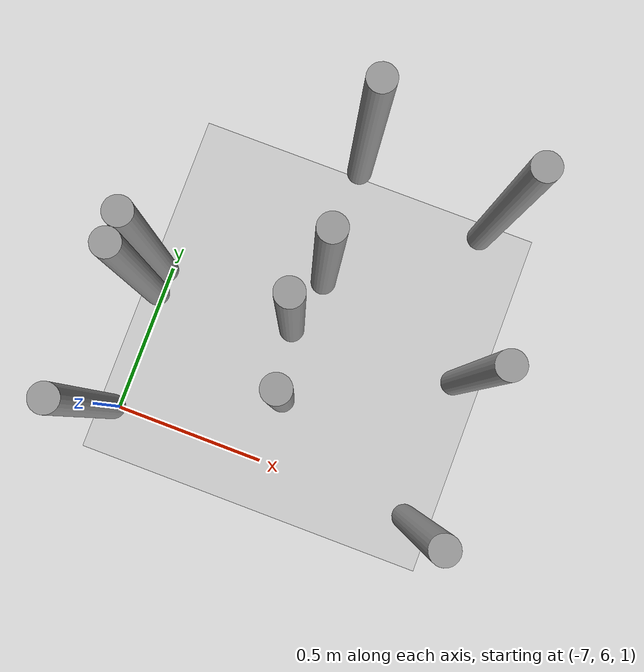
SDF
<sdf version="1.6">
 <world name="default">
  <model name="ground_plane">
   <static>1</static>
   <link name="link">
    <collision name="collision">
     <geometry><plane><normal>0 0 1</normal><size>100 100</size></plane></geometry>
     <surface>
      <contact><collide_bitmask>65535</collide_bitmask></contact>
      <friction><ode><mu>100</mu><mu2>50</mu2></ode></friction>
     </surface>
    </collision>
    <visual name="visual">
     <cast_shadows>0</cast_shadows>
     <geometry><plane><normal>0 0 1</normal><size>100 100</size></plane></geometry>
     <material>
      <script><uri>file://media/materials/scripts/gazebo.material</uri><name>Gazebo/Grey</name></script>
     </material>
    </visual>
   </link>
  </model>
  <model name="unit_cylinder_clone_16_clone_25">
   <link name="link">
    <inertial>
     <mass>10000.1</mass>
     <inertia><ixx>837.395</ixx><ixy>0</ixy><ixz>0</ixz><iyy>837.395</iyy><iyz>0</iyz><izz>8.09922</izz></inertia>
    </inertial>
    <visual name="visual">
     <geometry><cylinder><radius>0.0402468</radius><length>1</length></cylinder></geometry>
     <material>
      <script><name>Gazebo/Grey</name><uri>file://media/materials/scripts/gazebo.material</uri></script>
      <shader type="vertex"><normal_map>__default__</normal_map></shader>
     </material>
    </visual>
    <collision name="collision">
     <geometry><cylinder><radius>0.040247</radius><length>1</length></cylinder></geometry>
     <surface>
      <friction>
       <ode><mu>1</mu><mu2>1</mu2><fdir1>0 0 0</fdir1><slip1>0</slip1><slip2>0</slip2></ode>
       <torsional>
        <coefficient>1</coefficient>
        <patch_radius>0</patch_radius>
        <surface_radius>0</surface_radius>
        <use_patch_radius>1</use_patch_radius>
        <ode><slip>0</slip></ode>
       </torsional>
      </friction>
      <bounce><restitution_coefficient>0</restitution_coefficient><threshold>1e+06</threshold></bounce>
      <contact>
       <collide_without_contact>0</collide_without_contact>
       <collide_without_contact_bitmask>1</collide_without_contact_bitmask>
       <collide_bitmask>1</collide_bitmask>
       <ode>
        <soft_cfm>0</soft_cfm>
        <soft_erp>0.2</soft_erp>
        <kp>1e+13</kp>
        <kd>1</kd>
        <max_vel>0.01</max_vel>
        <min_depth>0</min_depth>
       </ode>
       <bullet>
        <split_impulse>1</split_impulse>
        <split_impulse_penetration_threshold>-0.01</split_impulse_penetration_threshold>
        <soft_cfm>0</soft_cfm>
        <soft_erp>0.2</soft_erp>
        <kp>1e+13</kp>
        <kd>1</kd>
       </bullet>
      </contact>
     </surface>
    </collision>
   </link>
   <static>0</static>
   <pose>-7 6 1.63725 -1e-06 1e-06 -0.000199</pose>
  </model>
  <model name="unit_cylinder_clone_16_clone_26">
   <link name="link">
    <inertial>
     <mass>10000.1</mass>
     <inertia><ixx>837.395</ixx><ixy>0</ixy><ixz>0</ixz><iyy>837.395</iyy><iyz>0</iyz><izz>8.09922</izz></inertia>
    </inertial>
    <visual name="visual">
     <geometry><cylinder><radius>0.0402468</radius><length>1</length></cylinder></geometry>
     <material>
      <script><name>Gazebo/Grey</name><uri>file://media/materials/scripts/gazebo.material</uri></script>
      <shader type="vertex"><normal_map>__default__</normal_map></shader>
     </material>
    </visual>
    <collision name="collision">
     <geometry><cylinder><radius>0.040247</radius><length>1</length></cylinder></geometry>
     <surface>
      <friction>
       <ode><mu>1</mu><mu2>1</mu2><fdir1>0 0 0</fdir1><slip1>0</slip1><slip2>0</slip2></ode>
       <torsional>
        <coefficient>1</coefficient>
        <patch_radius>0</patch_radius>
        <surface_radius>0</surface_radius>
        <use_patch_radius>1</use_patch_radius>
        <ode><slip>0</slip></ode>
       </torsional>
      </friction>
      <bounce><restitution_coefficient>0</restitution_coefficient><threshold>1e+06</threshold></bounce>
      <contact>
       <collide_without_contact>0</collide_without_contact>
       <collide_without_contact_bitmask>1</collide_without_contact_bitmask>
       <collide_bitmask>1</collide_bitmask>
       <ode>
        <soft_cfm>0</soft_cfm>
        <soft_erp>0.2</soft_erp>
        <kp>1e+13</kp>
        <kd>1</kd>
        <max_vel>0.01</max_vel>
        <min_depth>0</min_depth>
       </ode>
       <bullet>
        <split_impulse>1</split_impulse>
        <split_impulse_penetration_threshold>-0.01</split_impulse_penetration_threshold>
        <soft_cfm>0</soft_cfm>
        <soft_erp>0.2</soft_erp>
        <kp>1e+13</kp>
        <kd>1</kd>
       </bullet>
      </contact>
     </surface>
    </collision>
   </link>
   <static>0</static>
   <pose>-7.00005 6.47434 1.63725 1e-06 -2e-06 0.001516</pose>
  </model>
  <model name="unit_cylinder_clone_16_clone_27">
   <link name="link">
    <inertial>
     <mass>10000.1</mass>
     <inertia><ixx>837.395</ixx><ixy>0</ixy><ixz>0</ixz><iyy>837.395</iyy><iyz>0</iyz><izz>8.09922</izz></inertia>
    </inertial>
    <visual name="visual">
     <geometry><cylinder><radius>0.0402468</radius><length>1</length></cylinder></geometry>
     <material>
      <script><name>Gazebo/Grey</name><uri>file://media/materials/scripts/gazebo.material</uri></script>
      <shader type="vertex"><normal_map>__default__</normal_map></shader>
     </material>
    </visual>
    <collision name="collision">
     <geometry><cylinder><radius>0.040247</radius><length>1</length></cylinder></geometry>
     <surface>
      <friction>
       <ode><mu>1</mu><mu2>1</mu2><fdir1>0 0 0</fdir1><slip1>0</slip1><slip2>0</slip2></ode>
       <torsional>
        <coefficient>1</coefficient>
        <patch_radius>0</patch_radius>
        <surface_radius>0</surface_radius>
        <use_patch_radius>1</use_patch_radius>
        <ode><slip>0</slip></ode>
       </torsional>
      </friction>
      <bounce><restitution_coefficient>0</restitution_coefficient><threshold>1e+06</threshold></bounce>
      <contact>
       <collide_without_contact>0</collide_without_contact>
       <collide_without_contact_bitmask>1</collide_without_contact_bitmask>
       <collide_bitmask>1</collide_bitmask>
       <ode>
        <soft_cfm>0</soft_cfm>
        <soft_erp>0.2</soft_erp>
        <kp>1e+13</kp>
        <kd>1</kd>
        <max_vel>0.01</max_vel>
        <min_depth>0</min_depth>
       </ode>
       <bullet>
        <split_impulse>1</split_impulse>
        <split_impulse_penetration_threshold>-0.01</split_impulse_penetration_threshold>
        <soft_cfm>0</soft_cfm>
        <soft_erp>0.2</soft_erp>
        <kp>1e+13</kp>
        <kd>1</kd>
       </bullet>
      </contact>
     </surface>
    </collision>
   </link>
   <static>0</static>
   <pose>-6 6 1.63725 1e-06 -0 -0.000509</pose>
  </model>
  <model name="unit_cylinder_clone_16_clone_28">
   <link name="link">
    <inertial>
     <mass>10000.1</mass>
     <inertia><ixx>837.395</ixx><ixy>0</ixy><ixz>0</ixz><iyy>837.395</iyy><iyz>0</iyz><izz>8.09922</izz></inertia>
    </inertial>
    <visual name="visual">
     <geometry><cylinder><radius>0.0402468</radius><length>1</length></cylinder></geometry>
     <material>
      <script><name>Gazebo/Grey</name><uri>file://media/materials/scripts/gazebo.material</uri></script>
      <shader type="vertex"><normal_map>__default__</normal_map></shader>
     </material>
    </visual>
    <collision name="collision">
     <geometry><cylinder><radius>0.040247</radius><length>1</length></cylinder></geometry>
     <surface>
      <friction>
       <ode><mu>1</mu><mu2>1</mu2><fdir1>0 0 0</fdir1><slip1>0</slip1><slip2>0</slip2></ode>
       <torsional>
        <coefficient>1</coefficient>
        <patch_radius>0</patch_radius>
        <surface_radius>0</surface_radius>
        <use_patch_radius>1</use_patch_radius>
        <ode><slip>0</slip></ode>
       </torsional>
      </friction>
      <bounce><restitution_coefficient>0</restitution_coefficient><threshold>1e+06</threshold></bounce>
      <contact>
       <collide_without_contact>0</collide_without_contact>
       <collide_without_contact_bitmask>1</collide_without_contact_bitmask>
       <collide_bitmask>1</collide_bitmask>
       <ode>
        <soft_cfm>0</soft_cfm>
        <soft_erp>0.2</soft_erp>
        <kp>1e+13</kp>
        <kd>1</kd>
        <max_vel>0.01</max_vel>
        <min_depth>0</min_depth>
       </ode>
       <bullet>
        <split_impulse>1</split_impulse>
        <split_impulse_penetration_threshold>-0.01</split_impulse_penetration_threshold>
        <soft_cfm>0</soft_cfm>
        <soft_erp>0.2</soft_erp>
        <kp>1e+13</kp>
        <kd>1</kd>
       </bullet>
      </contact>
     </surface>
    </collision>
   </link>
   <static>0</static>
   <pose>-6.52356 7 1.63725 -0 -0 -0.00041</pose>
  </model>
  <model name="unit_cylinder_clone_16_clone_29">
   <link name="link">
    <inertial>
     <mass>10000.1</mass>
     <inertia><ixx>837.395</ixx><ixy>0</ixy><ixz>0</ixz><iyy>837.395</iyy><iyz>0</iyz><izz>8.09922</izz></inertia>
    </inertial>
    <visual name="visual">
     <geometry><cylinder><radius>0.0402468</radius><length>1</length></cylinder></geometry>
     <material>
      <script><name>Gazebo/Grey</name><uri>file://media/materials/scripts/gazebo.material</uri></script>
      <shader type="vertex"><normal_map>__default__</normal_map></shader>
     </material>
    </visual>
    <collision name="collision">
     <geometry><cylinder><radius>0.040247</radius><length>1</length></cylinder></geometry>
     <surface>
      <friction>
       <ode><mu>1</mu><mu2>1</mu2><fdir1>0 0 0</fdir1><slip1>0</slip1><slip2>0</slip2></ode>
       <torsional>
        <coefficient>1</coefficient>
        <patch_radius>0</patch_radius>
        <surface_radius>0</surface_radius>
        <use_patch_radius>1</use_patch_radius>
        <ode><slip>0</slip></ode>
       </torsional>
      </friction>
      <bounce><restitution_coefficient>0</restitution_coefficient><threshold>1e+06</threshold></bounce>
      <contact>
       <collide_without_contact>0</collide_without_contact>
       <collide_without_contact_bitmask>1</collide_without_contact_bitmask>
       <collide_bitmask>1</collide_bitmask>
       <ode>
        <soft_cfm>0</soft_cfm>
        <soft_erp>0.2</soft_erp>
        <kp>1e+13</kp>
        <kd>1</kd>
        <max_vel>0.01</max_vel>
        <min_depth>0</min_depth>
       </ode>
       <bullet>
        <split_impulse>1</split_impulse>
        <split_impulse_penetration_threshold>-0.01</split_impulse_penetration_threshold>
        <soft_cfm>0</soft_cfm>
        <soft_erp>0.2</soft_erp>
        <kp>1e+13</kp>
        <kd>1</kd>
       </bullet>
      </contact>
     </surface>
    </collision>
   </link>
   <static>0</static>
   <pose>-6.99996 6.39385 1.63725 0 -1e-06 0.001609</pose>
  </model>
  <model name="unit_cylinder_clone_16_clone_30">
   <link name="link">
    <inertial>
     <mass>10000.1</mass>
     <inertia><ixx>837.395</ixx><ixy>0</ixy><ixz>0</ixz><iyy>837.395</iyy><iyz>0</iyz><izz>8.09922</izz></inertia>
    </inertial>
    <visual name="visual">
     <geometry><cylinder><radius>0.0402468</radius><length>1</length></cylinder></geometry>
     <material>
      <script><name>Gazebo/Grey</name><uri>file://media/materials/scripts/gazebo.material</uri></script>
      <shader type="vertex"><normal_map>__default__</normal_map></shader>
     </material>
    </visual>
    <collision name="collision">
     <geometry><cylinder><radius>0.040247</radius><length>1</length></cylinder></geometry>
     <surface>
      <friction>
       <ode><mu>1</mu><mu2>1</mu2><fdir1>0 0 0</fdir1><slip1>0</slip1><slip2>0</slip2></ode>
       <torsional>
        <coefficient>1</coefficient>
        <patch_radius>0</patch_radius>
        <surface_radius>0</surface_radius>
        <use_patch_radius>1</use_patch_radius>
        <ode><slip>0</slip></ode>
       </torsional>
      </friction>
      <bounce><restitution_coefficient>0</restitution_coefficient><threshold>1e+06</threshold></bounce>
      <contact>
       <collide_without_contact>0</collide_without_contact>
       <collide_without_contact_bitmask>1</collide_without_contact_bitmask>
       <collide_bitmask>1</collide_bitmask>
       <ode>
        <soft_cfm>0</soft_cfm>
        <soft_erp>0.2</soft_erp>
        <kp>1e+13</kp>
        <kd>1</kd>
        <max_vel>0.01</max_vel>
        <min_depth>0</min_depth>
       </ode>
       <bullet>
        <split_impulse>1</split_impulse>
        <split_impulse_penetration_threshold>-0.01</split_impulse_penetration_threshold>
        <soft_cfm>0</soft_cfm>
        <soft_erp>0.2</soft_erp>
        <kp>1e+13</kp>
        <kd>1</kd>
       </bullet>
      </contact>
     </surface>
    </collision>
   </link>
   <static>0</static>
   <pose>-6.54877 6.43576 1.63725 -2e-06 -0 -0.000438</pose>
  </model>
  <model name="unit_cylinder_clone_16_clone_31">
   <link name="link">
    <inertial>
     <mass>10000.1</mass>
     <inertia><ixx>837.395</ixx><ixy>0</ixy><ixz>0</ixz><iyy>837.395</iyy><iyz>0</iyz><izz>8.09922</izz></inertia>
    </inertial>
    <visual name="visual">
     <geometry><cylinder><radius>0.0402468</radius><length>1</length></cylinder></geometry>
     <material>
      <script><name>Gazebo/Grey</name><uri>file://media/materials/scripts/gazebo.material</uri></script>
      <shader type="vertex"><normal_map>__default__</normal_map></shader>
     </material>
    </visual>
    <collision name="collision">
     <geometry><cylinder><radius>0.040247</radius><length>1</length></cylinder></geometry>
     <surface>
      <friction>
       <ode><mu>1</mu><mu2>1</mu2><fdir1>0 0 0</fdir1><slip1>0</slip1><slip2>0</slip2></ode>
       <torsional>
        <coefficient>1</coefficient>
        <patch_radius>0</patch_radius>
        <surface_radius>0</surface_radius>
        <use_patch_radius>1</use_patch_radius>
        <ode><slip>0</slip></ode>
       </torsional>
      </friction>
      <bounce><restitution_coefficient>0</restitution_coefficient><threshold>1e+06</threshold></bounce>
      <contact>
       <collide_without_contact>0</collide_without_contact>
       <collide_without_contact_bitmask>1</collide_without_contact_bitmask>
       <collide_bitmask>1</collide_bitmask>
       <ode>
        <soft_cfm>0</soft_cfm>
        <soft_erp>0.2</soft_erp>
        <kp>1e+13</kp>
        <kd>1</kd>
        <max_vel>0.01</max_vel>
        <min_depth>0</min_depth>
       </ode>
       <bullet>
        <split_impulse>1</split_impulse>
        <split_impulse_penetration_threshold>-0.01</split_impulse_penetration_threshold>
        <soft_cfm>0</soft_cfm>
        <soft_erp>0.2</soft_erp>
        <kp>1e+13</kp>
        <kd>1</kd>
       </bullet>
      </contact>
     </surface>
    </collision>
   </link>
   <static>0</static>
   <pose>-6.4974 6.21124 1.63725 1e-06 1e-06 -0.000632</pose>
  </model>
  <model name="unit_cylinder_clone_16_clone_32">
   <link name="link">
    <inertial>
     <mass>10000.1</mass>
     <inertia><ixx>837.395</ixx><ixy>0</ixy><ixz>0</ixz><iyy>837.395</iyy><iyz>0</iyz><izz>8.09922</izz></inertia>
    </inertial>
    <visual name="visual">
     <geometry><cylinder><radius>0.0402468</radius><length>1</length></cylinder></geometry>
     <material>
      <script><name>Gazebo/Grey</name><uri>file://media/materials/scripts/gazebo.material</uri></script>
      <shader type="vertex"><normal_map>__default__</normal_map></shader>
     </material>
    </visual>
    <collision name="collision">
     <geometry><cylinder><radius>0.040247</radius><length>1</length></cylinder></geometry>
     <surface>
      <friction>
       <ode><mu>1</mu><mu2>1</mu2><fdir1>0 0 0</fdir1><slip1>0</slip1><slip2>0</slip2></ode>
       <torsional>
        <coefficient>1</coefficient>
        <patch_radius>0</patch_radius>
        <surface_radius>0</surface_radius>
        <use_patch_radius>1</use_patch_radius>
        <ode><slip>0</slip></ode>
       </torsional>
      </friction>
      <bounce><restitution_coefficient>0</restitution_coefficient><threshold>1e+06</threshold></bounce>
      <contact>
       <collide_without_contact>0</collide_without_contact>
       <collide_without_contact_bitmask>1</collide_without_contact_bitmask>
       <collide_bitmask>1</collide_bitmask>
       <ode>
        <soft_cfm>0</soft_cfm>
        <soft_erp>0.2</soft_erp>
        <kp>1e+13</kp>
        <kd>1</kd>
        <max_vel>0.01</max_vel>
        <min_depth>0</min_depth>
       </ode>
       <bullet>
        <split_impulse>1</split_impulse>
        <split_impulse_penetration_threshold>-0.01</split_impulse_penetration_threshold>
        <soft_cfm>0</soft_cfm>
        <soft_erp>0.2</soft_erp>
        <kp>1e+13</kp>
        <kd>1</kd>
       </bullet>
      </contact>
     </surface>
    </collision>
   </link>
   <static>0</static>
   <pose>-6 6.45808 1.63725 0 -1e-06 -0.000576</pose>
  </model>
  <model name="unit_cylinder_clone_16_clone_33">
   <link name="link">
    <inertial>
     <mass>10000.1</mass>
     <inertia><ixx>837.395</ixx><ixy>0</ixy><ixz>0</ixz><iyy>837.395</iyy><iyz>0</iyz><izz>8.09922</izz></inertia>
    </inertial>
    <visual name="visual">
     <geometry><cylinder><radius>0.0402468</radius><length>1</length></cylinder></geometry>
     <material>
      <script><name>Gazebo/Grey</name><uri>file://media/materials/scripts/gazebo.material</uri></script>
      <shader type="vertex"><normal_map>__default__</normal_map></shader>
     </material>
    </visual>
    <collision name="collision">
     <geometry><cylinder><radius>0.040247</radius><length>1</length></cylinder></geometry>
     <surface>
      <friction>
       <ode><mu>1</mu><mu2>1</mu2><fdir1>0 0 0</fdir1><slip1>0</slip1><slip2>0</slip2></ode>
       <torsional>
        <coefficient>1</coefficient>
        <patch_radius>0</patch_radius>
        <surface_radius>0</surface_radius>
        <use_patch_radius>1</use_patch_radius>
        <ode><slip>0</slip></ode>
       </torsional>
      </friction>
      <bounce><restitution_coefficient>0</restitution_coefficient><threshold>1e+06</threshold></bounce>
      <contact>
       <collide_without_contact>0</collide_without_contact>
       <collide_without_contact_bitmask>1</collide_without_contact_bitmask>
       <collide_bitmask>1</collide_bitmask>
       <ode>
        <soft_cfm>0</soft_cfm>
        <soft_erp>0.2</soft_erp>
        <kp>1e+13</kp>
        <kd>1</kd>
        <max_vel>0.01</max_vel>
        <min_depth>0</min_depth>
       </ode>
       <bullet>
        <split_impulse>1</split_impulse>
        <split_impulse_penetration_threshold>-0.01</split_impulse_penetration_threshold>
        <soft_cfm>0</soft_cfm>
        <soft_erp>0.2</soft_erp>
        <kp>1e+13</kp>
        <kd>1</kd>
       </bullet>
      </contact>
     </surface>
    </collision>
   </link>
   <static>0</static>
   <pose>-6.50755 6.61695 1.63725 -1e-06 -0 -0.000364</pose>
  </model>
  <model name="unit_cylinder_clone_16_clone_34">
   <link name="link">
    <inertial>
     <mass>10000.1</mass>
     <inertia><ixx>837.395</ixx><ixy>0</ixy><ixz>0</ixz><iyy>837.395</iyy><iyz>0</iyz><izz>8.09922</izz></inertia>
    </inertial>
    <visual name="visual">
     <geometry><cylinder><radius>0.0402468</radius><length>1</length></cylinder></geometry>
     <material>
      <script><name>Gazebo/Grey</name><uri>file://media/materials/scripts/gazebo.material</uri></script>
      <shader type="vertex"><normal_map>__default__</normal_map></shader>
     </material>
    </visual>
    <collision name="collision">
     <geometry><cylinder><radius>0.040247</radius><length>1</length></cylinder></geometry>
     <surface>
      <friction>
       <ode><mu>1</mu><mu2>1</mu2><fdir1>0 0 0</fdir1><slip1>0</slip1><slip2>0</slip2></ode>
       <torsional>
        <coefficient>1</coefficient>
        <patch_radius>0</patch_radius>
        <surface_radius>0</surface_radius>
        <use_patch_radius>1</use_patch_radius>
        <ode><slip>0</slip></ode>
       </torsional>
      </friction>
      <bounce><restitution_coefficient>0</restitution_coefficient><threshold>1e+06</threshold></bounce>
      <contact>
       <collide_without_contact>0</collide_without_contact>
       <collide_without_contact_bitmask>1</collide_without_contact_bitmask>
       <collide_bitmask>1</collide_bitmask>
       <ode>
        <soft_cfm>0</soft_cfm>
        <soft_erp>0.2</soft_erp>
        <kp>1e+13</kp>
        <kd>1</kd>
        <max_vel>0.01</max_vel>
        <min_depth>0</min_depth>
       </ode>
       <bullet>
        <split_impulse>1</split_impulse>
        <split_impulse_penetration_threshold>-0.01</split_impulse_penetration_threshold>
        <soft_cfm>0</soft_cfm>
        <soft_erp>0.2</soft_erp>
        <kp>1e+13</kp>
        <kd>1</kd>
       </bullet>
      </contact>
     </surface>
    </collision>
   </link>
   <static>0</static>
   <pose>-6.08043 6.9341 1.63725 1e-06 -1e-06 -0.000316</pose>
  </model>
 </world>
</sdf>
